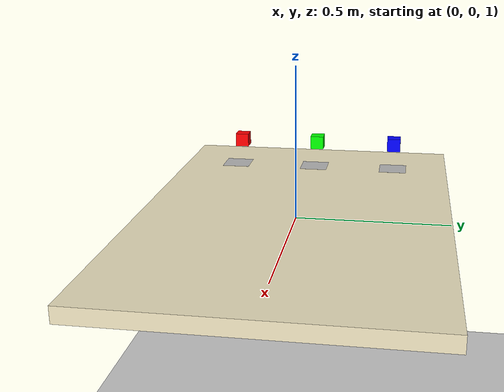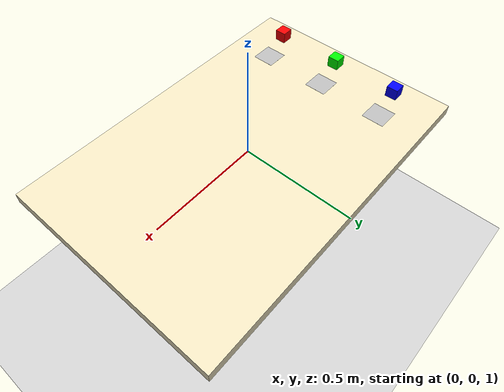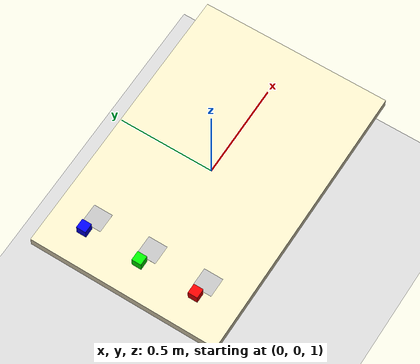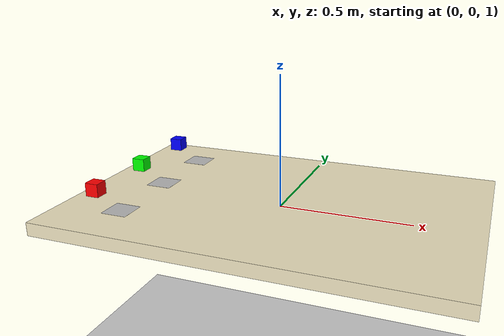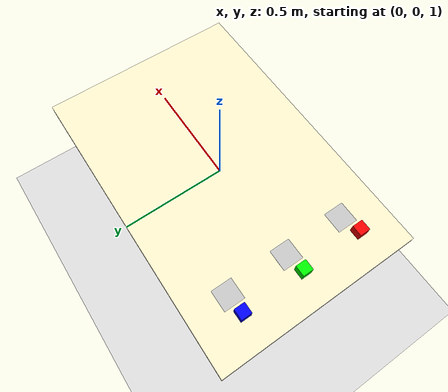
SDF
<sdf version="1.6">
 <world name="space_station_apriltag_world">
  <physics name="sim_time" type="ignored">
   <max_step_size>0.005</max_step_size>
   <real_time_update_rate>0.005</real_time_update_rate>
   <real_time_factor>1.0</real_time_factor>
  </physics>
  <plugin filename="ignition-gazebo-physics-system" name="ignition::gazebo::systems::Physics"/>
  <plugin filename="ignition-gazebo-user-commands-system" name="ignition::gazebo::systems::UserCommands"/>
  <plugin filename="ignition-gazebo-scene-broadcaster-system" name="ignition::gazebo::systems::SceneBroadcaster"/>
  <plugin filename="ignition-gazebo-contact-system" name="ignition::gazebo::systems::Contact"/>
  <plugin filename="ignition-gazebo-forcetorque-system" name="ignition::gazebo::systems::ForceTorque"/>
  <scene><ambient>0.0 0.0 0.0 1.0</ambient><shadows>0</shadows></scene>
  <light type="directional" name="right-light">
   <cast_shadows>false</cast_shadows>
   <pose>0 0 100 0 0 0</pose>
   <diffuse>0.6 0.6 0.6 1</diffuse>
   <specular>0.2 0.2 0.2 1</specular>
   <attenuation>
    <range>1000</range>
    <constant>0.9</constant>
    <linear>0.01</linear>
    <quadratic>0.001</quadratic>
   </attenuation>
   <direction>-0.5 0.5 -1.0</direction>
  </light>
  <light type="directional" name="left-light">
   <cast_shadows>false</cast_shadows>
   <pose>0 0 100 0 0 0</pose>
   <diffuse>0.8 0.8 0.8 1</diffuse>
   <specular>0.2 0.2 0.2 1</specular>
   <attenuation>
    <range>1000</range>
    <constant>0.9</constant>
    <linear>0.01</linear>
    <quadratic>0.001</quadratic>
   </attenuation>
   <direction>-0.5 -0.5 -1.0</direction>
  </light>
  <light type="directional" name="bottom-light">
   <cast_shadows>false</cast_shadows>
   <pose>0 0 -100 0 0 0</pose>
   <diffuse>0.5 0.5 0.5 1</diffuse>
   <specular>0.5 0.5 0.5 1</specular>
   <attenuation>
    <range>1000</range>
    <constant>0.9</constant>
    <linear>0.01</linear>
    <quadratic>0.001</quadratic>
   </attenuation>
   <direction>0.0 0.0 1.0</direction>
  </light>
  <light type="directional" name="front-right-light">
   <cast_shadows>false</cast_shadows>
   <pose>100 75 1.5 0 0 0</pose>
   <diffuse>0.4 0.4 0.4 1</diffuse>
   <specular>0.4 0.4 0.4 1</specular>
   <attenuation>
    <range>1000</range>
    <constant>0.9</constant>
    <linear>0.01</linear>
    <quadratic>0.001</quadratic>
   </attenuation>
   <direction>-1.0 -0.75 0.0</direction>
  </light>
  <light type="directional" name="front-left-light">
   <cast_shadows>false</cast_shadows>
   <pose>100 -75 1.5 0 0 0</pose>
   <diffuse>0.4 0.4 0.4</diffuse>
   <specular>0.4 0.4 0.4 1</specular>
   <attenuation>
    <range>1000</range>
    <constant>0.9</constant>
    <linear>0.01</linear>
    <quadratic>0.001</quadratic>
   </attenuation>
   <direction>-1.0 0.75 0.0</direction>
  </light>
  <model name="ground_plane">
   <static>true</static>
   <link name="link">
    <collision name="collision">
     <geometry><plane><normal>0 0 1</normal><size>100 100</size></plane></geometry>
    </collision>
    <visual name="visual">
     <geometry><plane><normal>0 0 1</normal><size>100 100</size></plane></geometry>
     <material>
      <ambient>0.8 0.8 0.8 1</ambient>
      <diffuse>0.8 0.8 0.8 1</diffuse>
      <specular>0.8 0.8 0.8 1</specular>
     </material>
    </visual>
   </link>
  </model>
  <model name="table">
   <static>true</static>
   <pose>0 0 1 0 0 0</pose>
   <link name="table_link">
    <collision name="box_collision">
     <geometry><box><size>1.5 1.0 0.05</size></box></geometry>
     <surface>
      <friction><ode><mu1>0.6</mu1><mu2>0.6</mu2></ode></friction>
      <contact>
       <ode><kp>1e+5</kp><kd>1</kd><soft_cfm>0</soft_cfm><soft_erp>0.2</soft_erp><minDepth>0.001</minDepth></ode>
      </contact>
     </surface>
    </collision>
    <visual name="table_visual">
     <geometry><box><size>1.5 1.0 0.05</size></box></geometry>
     <material><ambient>0.93 0.89 0.75 1.0</ambient><emissive>0.93 0.89 0.75 1.0</emissive></material>
    </visual>
   </link>
  </model>
  <model name="box_red">
   <pose>-0.6 -0.3 1.1 0 0 0</pose>
   <link name="box_link">
    <inertial>
     <inertia>
      <ixx>0.0001875</ixx>
      <ixy>0</ixy>
      <ixz>0</ixz>
      <iyy>0.0001875</iyy>
      <iyz>0</iyz>
      <izz>0.0001875</izz>
     </inertia>
     <mass>0.2</mass>
    </inertial>
    <collision name="box_collision">
     <geometry><box><size>0.05 0.05 0.05</size></box></geometry>
     <surface>
      <friction><ode><mu1>1000000.0</mu1><mu2>1000000.0</mu2></ode></friction>
      <contact>
       <ode>
        <kp>1e+5</kp>
        <kd>1</kd>
        <soft_cfm>0</soft_cfm>
        <soft_erp>0.2</soft_erp>
        <minDepth>0.002</minDepth>
        <maxVel>0</maxVel>
       </ode>
      </contact>
     </surface>
    </collision>
    <visual name="box_visual">
     <geometry><box><size>0.05 0.05 0.05</size></box></geometry>
     <material><ambient>1 0 0 1</ambient><diffuse>1 0 0 1</diffuse><specular>1 0 0 1</specular></material>
    </visual>
   </link>
  </model>
  <model name="box_green">
   <pose>-0.6 0.0 1.1 0 0 0</pose>
   <link name="box_link">
    <inertial>
     <inertia>
      <ixx>0.0001875</ixx>
      <ixy>0</ixy>
      <ixz>0</ixz>
      <iyy>0.0001875</iyy>
      <iyz>0</iyz>
      <izz>0.0001875</izz>
     </inertia>
     <mass>0.2</mass>
    </inertial>
    <collision name="box_collision">
     <geometry><box><size>0.05 0.05 0.05</size></box></geometry>
     <surface>
      <friction><ode><mu1>1000000.0</mu1><mu2>1000000.0</mu2></ode></friction>
      <contact>
       <ode>
        <kp>1e+5</kp>
        <kd>1</kd>
        <soft_cfm>0</soft_cfm>
        <soft_erp>0.2</soft_erp>
        <minDepth>0.002</minDepth>
        <maxVel>0</maxVel>
       </ode>
      </contact>
     </surface>
    </collision>
    <visual name="box_visual">
     <geometry><box><size>0.05 0.05 0.05</size></box></geometry>
     <material><ambient>0 1 0 1</ambient><diffuse>0 1 0 1</diffuse><specular>0 1 0 1</specular></material>
    </visual>
   </link>
  </model>
  <model name="box_blue">
   <pose>-0.6 0.3 1.1 0 0 0</pose>
   <link name="box_link">
    <inertial>
     <inertia>
      <ixx>0.0001875</ixx>
      <ixy>0</ixy>
      <ixz>0</ixz>
      <iyy>0.0001875</iyy>
      <iyz>0</iyz>
      <izz>0.0001875</izz>
     </inertia>
     <mass>0.2</mass>
    </inertial>
    <collision name="box_collision">
     <geometry><box><size>0.05 0.05 0.05</size></box></geometry>
     <surface>
      <friction><ode><mu1>1000000.0</mu1><mu2>1000000.0</mu2></ode></friction>
      <contact>
       <ode>
        <kp>1e+5</kp>
        <kd>1</kd>
        <soft_cfm>0</soft_cfm>
        <soft_erp>0.2</soft_erp>
        <minDepth>0.002</minDepth>
        <maxVel>0</maxVel>
       </ode>
      </contact>
     </surface>
    </collision>
    <visual name="box_visual">
     <geometry><box><size>0.05 0.05 0.05</size></box></geometry>
     <material><ambient>0 0 1 1</ambient><diffuse>0 0 1 1</diffuse><specular>0 0 1 1</specular></material>
    </visual>
   </link>
  </model>
  <model name="apriltag_01">
   <pose>-0.5 -0.3 1.03 0 0 0</pose>
   <link name="apriltag">
    <visual name="apriltag_visual">
     <geometry>
      <mesh>
       <scale>1 1 1</scale>
       <uri>package://picknik_ur_gazebo_config/description/apriltags/tag36_11_00001.dae</uri>
      </mesh>
     </geometry>
    </visual>
    <inertial>
     <inertia><ixx>0.0001</ixx><ixy>0</ixy><ixz>0</ixz><iyy>0.0001</iyy><iyz>0</iyz><izz>0.0001</izz></inertia>
     <mass>0.01</mass>
    </inertial>
   </link>
   <static>1</static>
  </model>
  <model name="apriltag_02">
   <pose>-0.5 0.0 1.03 0 0 0</pose>
   <link name="apriltag">
    <visual name="apriltag_visual">
     <geometry>
      <mesh>
       <scale>1 1 1</scale>
       <uri>package://picknik_ur_gazebo_config/description/apriltags/tag36_11_00002.dae</uri>
      </mesh>
     </geometry>
    </visual>
    <inertial>
     <inertia><ixx>0.0001</ixx><ixy>0</ixy><ixz>0</ixz><iyy>0.0001</iyy><iyz>0</iyz><izz>0.0001</izz></inertia>
     <mass>0.01</mass>
    </inertial>
   </link>
   <static>1</static>
  </model>
  <model name="apriltag_03">
   <pose>-0.5 0.3 1.03 0 0 0</pose>
   <link name="apriltag">
    <visual name="apriltag_visual">
     <geometry>
      <mesh>
       <scale>1 1 1</scale>
       <uri>package://picknik_ur_gazebo_config/description/apriltags/tag36_11_00003.dae</uri>
      </mesh>
     </geometry>
    </visual>
    <inertial>
     <inertia><ixx>0.0001</ixx><ixy>0</ixy><ixz>0</ixz><iyy>0.0001</iyy><iyz>0</iyz><izz>0.0001</izz></inertia>
     <mass>0.01</mass>
    </inertial>
   </link>
   <static>1</static>
  </model>
 </world>
</sdf>
